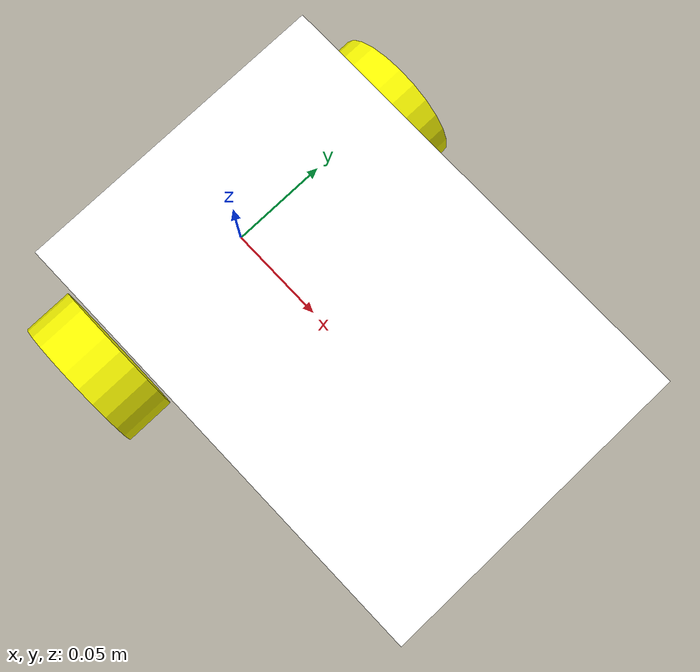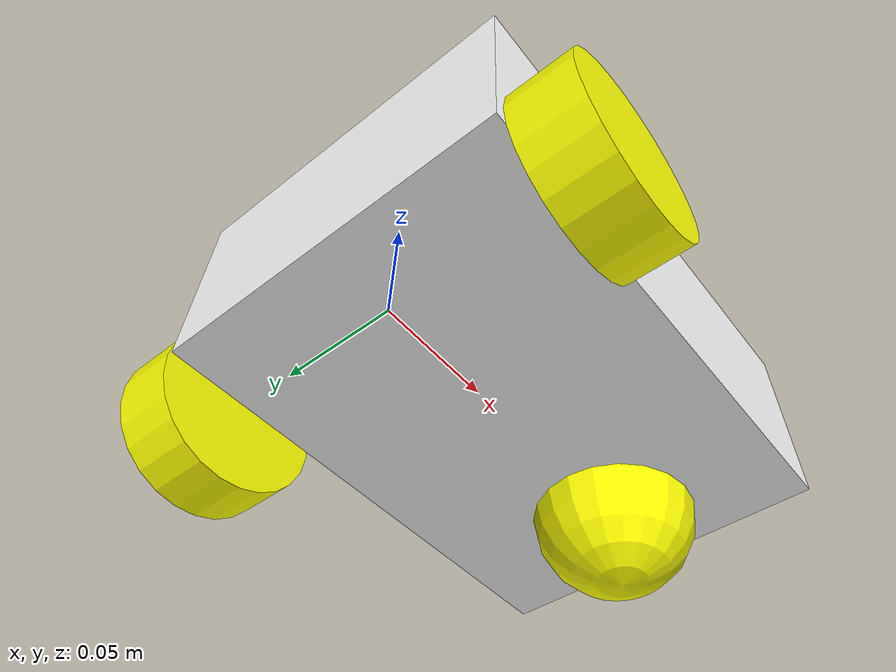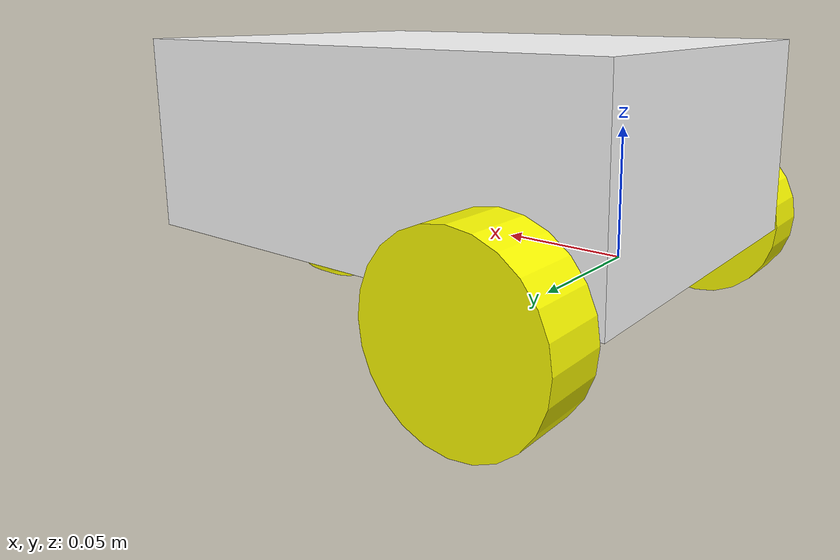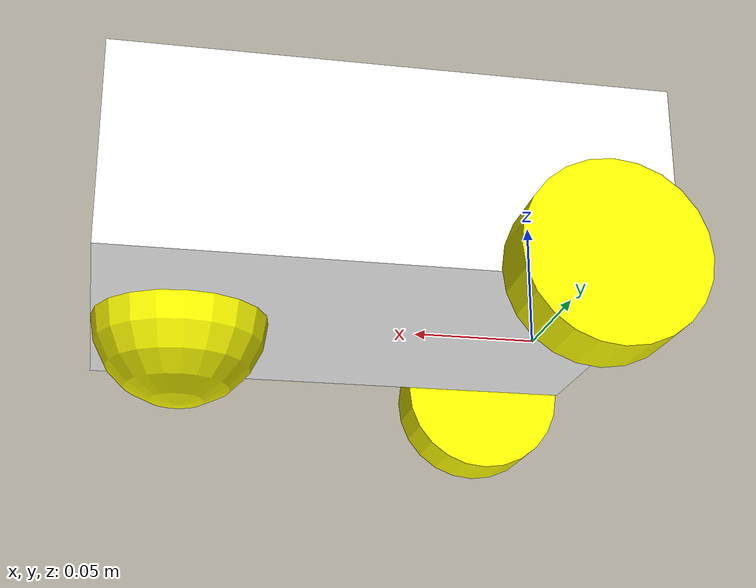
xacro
<?xml version="1.0"?>
<robot xmlns:xacro="http://www.ros.org/wiki/xacro" >

    <xacro:include filename="inertial_macros.xacro"/>

    <material name="white">
        <color rgba="1 1 1 1" />
    </material>

    <material name="orange">
        <color rgba="1 0.3 0.1 1"/>
    </material>

    <material name="blue">
        <color rgba="0.2 0.2 1 1"/>
    </material>

    <material name="black">
        <color rgba="0 0 0 1"/>
    </material>

    <material name="red">
        <color rgba="1 0 0 1"/>
    </material>

    <material name="yellow">
        <color rgba="1 1 0 1"/>
    </material>

    <!-- BASE LINK -->

    <link name="base_link">

    </link>

    <!-- BASE FOOTPRINT LINK -->
    <joint name="base_footprint_joint" type="fixed">
        <parent link="base_link"/>
        <child link="base_footprint"/>
       <origin xyz="-0.035 0 0" rpy="0 0 0" />
    </joint>

    <link name="base_footprint">
    </link>

    <!-- CHASSIS LINK -->

    <joint name="chassis_joint" type="fixed">
        <parent link="base_link"/>
        <child link="chassis"/>
       <origin xyz="-0.035 0 0" rpy="0 0 0" />
    </joint>

    <link name="chassis">
        <visual>
            <origin xyz="0.1075 0 0.04"/>
            <geometry>
                <box size="0.215 0.15 0.08"/>
            </geometry>
            <material name="white"/>
        </visual>
        <collision>
            <origin xyz="0.15 0 0.075"/>
            <geometry>
                <box size="0.215 0.15 0.08"/>
            </geometry>
        </collision>
        <xacro:inertial_box mass="0.5" x="0.215" y="0.15" z="0.08">
            <origin xyz="0.15 0 0.075" rpy="0 0 0"/>
        </xacro:inertial_box>
    </link>

    <gazebo reference="chassis">
        <material>Gazebo/White</material>
    </gazebo>

    <!-- LEFT WHEEL LINK -->

    <joint name="left_wheel_joint" type="continuous">
        <parent link="base_link"/>
        <child link="left_wheel"/>
        <origin xyz="0 0.09 0" rpy="-1.57075 0 0" />
        <axis xyz="0 0 1"/>
    </joint>

    <link name="left_wheel">
        <visual>
            <geometry>
                <cylinder radius="0.035" length="0.025"/>
            </geometry>
            <material name="yellow"/>
        </visual>
        <collision>
            <geometry>
                <sphere radius="0.035"/>
            </geometry>
        </collision>
        <xacro:inertial_cylinder mass="0.1" length="0.025" radius="0.035">
            <origin xyz="0 0 0" rpy="0 0 0"/>
        </xacro:inertial_cylinder>
    </link>

    <gazebo reference="left_wheel">
        <material>Gazebo/Yellow</material>
    </gazebo>

    <!-- RIGHT WHEEL LINK -->

    <joint name="right_wheel_joint" type="continuous">
        <parent link="base_link"/>
        <child link="right_wheel"/>
        <origin xyz="0 -0.09 0" rpy="1.57075 0 0"/>
        <axis xyz="0 0 -1"/>
    </joint>

    <link name="right_wheel">
        <visual>
            <geometry>
                <cylinder radius="0.035" length="0.025"/>
            </geometry>
            <material name="yellow"/>
        </visual>
        <collision>
            <geometry>
                <sphere radius="0.035"/>
            </geometry>
        </collision>
        <xacro:inertial_cylinder mass="0.1" length="0.025" radius="0.035">
            <origin xyz="0 0 0" rpy="0 0 0"/>
        </xacro:inertial_cylinder>
    </link>

    <gazebo reference="right_wheel">
        <material>Gazebo/Yellow</material>
    </gazebo>

    <!-- CASTER WHEEL LINK -->

    <joint name="caster_wheel_joint" type="fixed">
        <parent link="chassis"/>
        <child link="caster_wheel"/>
        <origin xyz="0.18 0 0"/>
    </joint>

    <link name="caster_wheel">
        <visual>
            <geometry>
                <sphere radius="0.035"/>
            </geometry>
            <material name="yellow"/>
        </visual>
        <collision>
            <geometry>
                <sphere radius="0.035"/>
            </geometry>
        </collision>
        <xacro:inertial_sphere mass="0.1" radius="0.035">
            <origin xyz="0 0 0" rpy="0 0 0"/>
        </xacro:inertial_sphere>
    </link>

    <gazebo reference="caster_wheel">
        <material>Gazebo/Yellow</material>
        <mu1 value="0.001"/>
        <mu2 value="0.001"/>
    </gazebo>

</robot>
